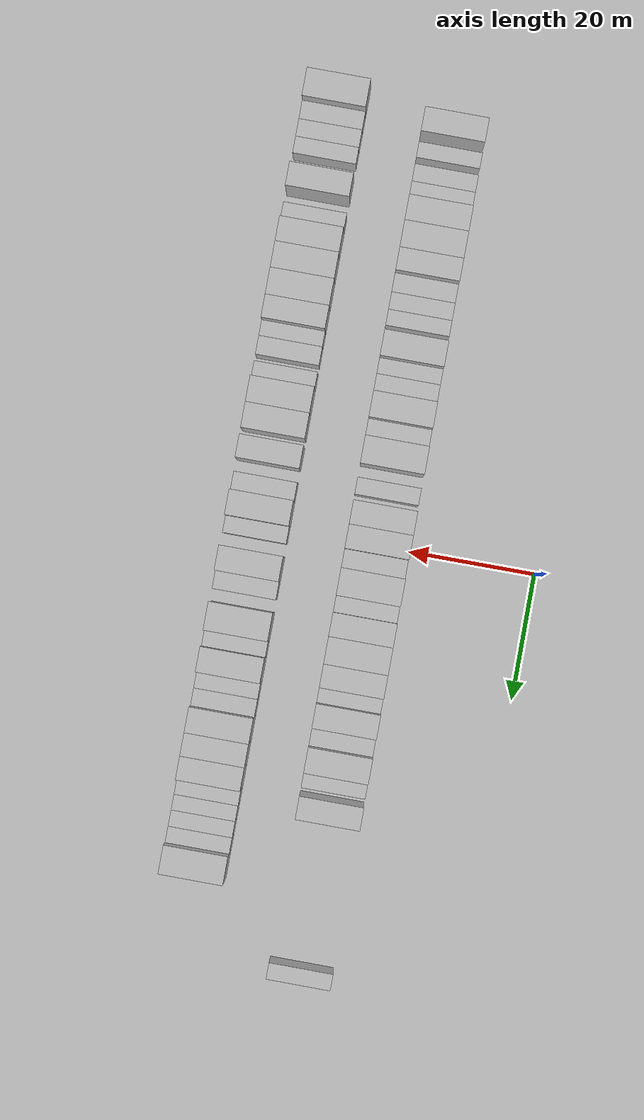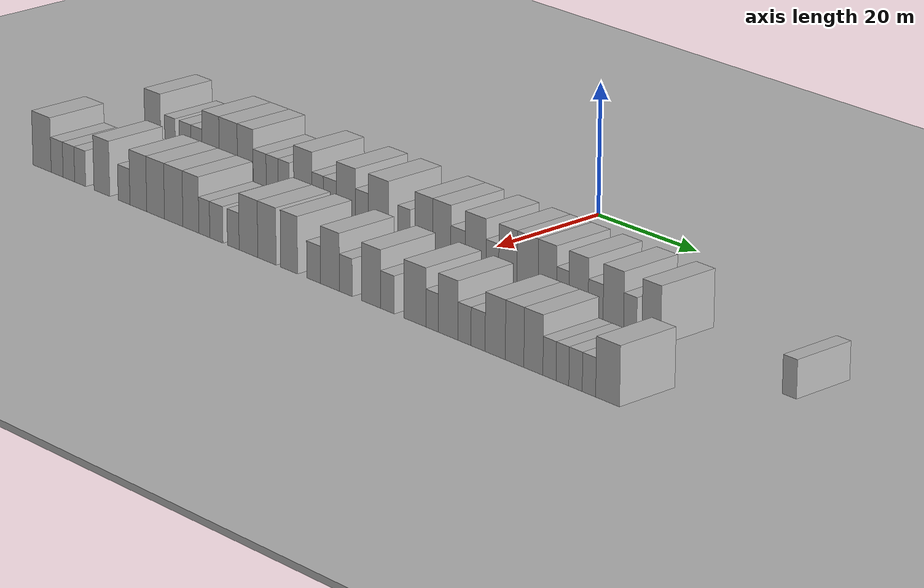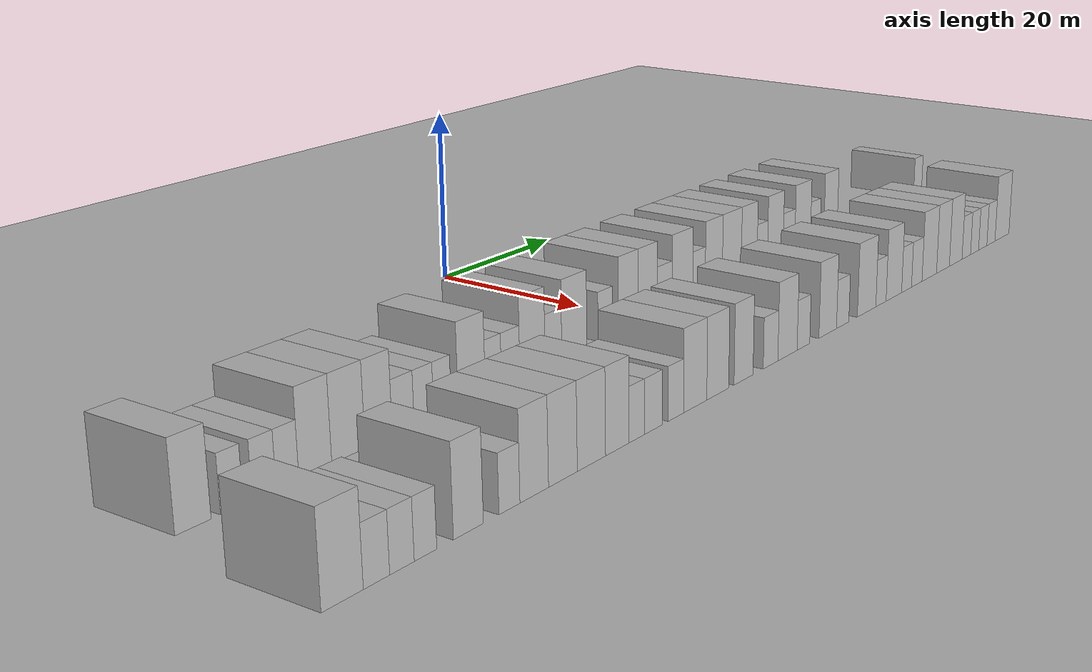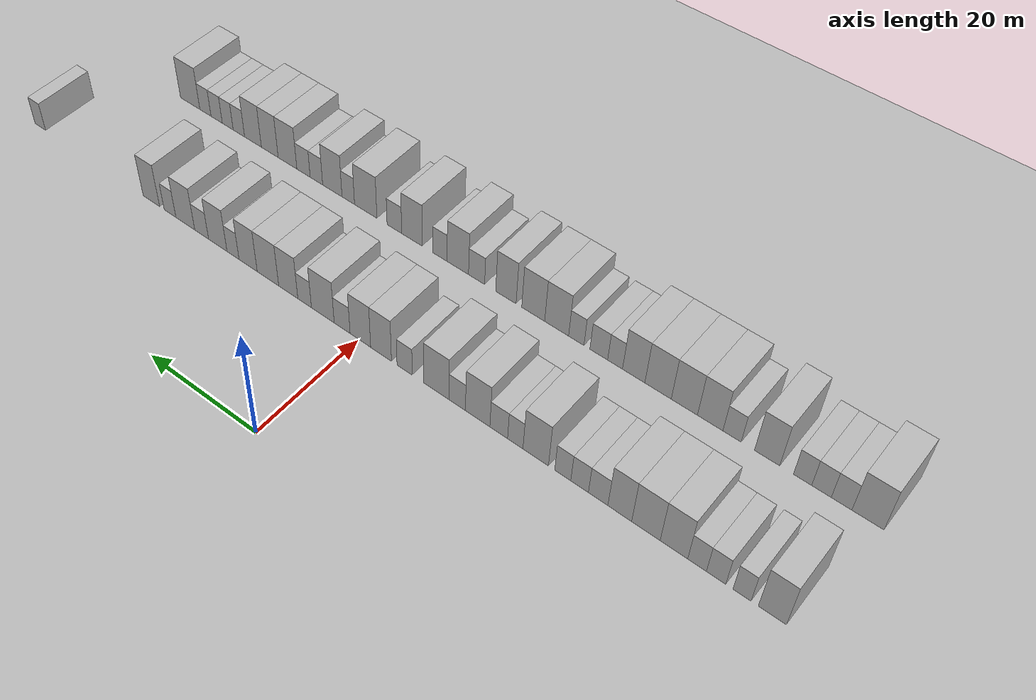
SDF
<sdf version="1.6">
 <world name="default">
  <include><name>ground_plane_1</name><uri>model://HANNAS_ground_plane</uri></include>
  <include>
   <name>ground_plane_2</name>
   <uri>model://HANNAS_ground_plane</uri>
   <pose>100 0 0  0 0 0</pose>
  </include>
  <model name="building_31">
   <static>1</static>
   <pose>25.0000 -65.7433 0 0.000000 0.000000 0.000000</pose>
   <link name="link">
    <pose>0 0 4.50 0 0 0</pose>
    <collision name="collision"><geometry><box><size>10.0000 3.8264 9.0000</size></box></geometry></collision>
    <visual name="visual">
     <cast_shadows>0</cast_shadows>
     <geometry><box><size>10.0000 3.8264 9.0000</size></box></geometry>
     <material>
      <script>
       <uri>model://HANNAS_wall/materials/scripts</uri>
       <uri>model://HANNAS_wall/materials/textures</uri>
       <name>vrc/HANNAS_wall</name>
      </script>
     </material>
    </visual>
   </link>
  </model>
  <model name="building_32">
   <static>1</static>
   <pose>25.0000 -61.5721 0 0.000000 0.000000 0.000000</pose>
   <link name="link">
    <pose>0 0 3.00 0 0 0</pose>
    <collision name="collision"><geometry><box><size>10.0000 2.5161 6.0000</size></box></geometry></collision>
    <visual name="visual">
     <cast_shadows>0</cast_shadows>
     <geometry><box><size>10.0000 2.5161 6.0000</size></box></geometry>
     <material>
      <script>
       <uri>model://HANNAS_wall/materials/scripts</uri>
       <uri>model://HANNAS_wall/materials/textures</uri>
       <name>vrc/HANNAS_wall</name>
      </script>
     </material>
    </visual>
   </link>
  </model>
  <model name="building_33">
   <static>1</static>
   <pose>25.0000 -57.9452 0 0.000000 0.000000 0.000000</pose>
   <link name="link">
    <pose>0 0 3.00 0 0 0</pose>
    <collision name="collision"><geometry><box><size>10.0000 2.7375 6.0000</size></box></geometry></collision>
    <visual name="visual">
     <cast_shadows>0</cast_shadows>
     <geometry><box><size>10.0000 2.7375 6.0000</size></box></geometry>
     <material>
      <script>
       <uri>model://HANNAS_wall/materials/scripts</uri>
       <uri>model://HANNAS_wall/materials/textures</uri>
       <name>vrc/HANNAS_wall</name>
      </script>
     </material>
    </visual>
   </link>
  </model>
  <model name="building_34">
   <static>1</static>
   <pose>25.0000 -55.2380 0 0.000000 0.000000 0.000000</pose>
   <link name="link">
    <pose>0 0 3.00 0 0 0</pose>
    <collision name="collision"><geometry><box><size>10.0000 2.6770 6.0000</size></box></geometry></collision>
    <visual name="visual">
     <cast_shadows>0</cast_shadows>
     <geometry><box><size>10.0000 2.6770 6.0000</size></box></geometry>
     <material>
      <script>
       <uri>model://HANNAS_wall/materials/scripts</uri>
       <uri>model://HANNAS_wall/materials/textures</uri>
       <name>vrc/HANNAS_wall</name>
      </script>
     </material>
    </visual>
   </link>
  </model>
  <model name="building_35">
   <static>1</static>
   <pose>25.0000 -51.8921 0 0.000000 0.000000 0.000000</pose>
   <link name="link">
    <pose>0 0 4.50 0 0 0</pose>
    <collision name="collision"><geometry><box><size>10.0000 4.0147 9.0000</size></box></geometry></collision>
    <visual name="visual">
     <cast_shadows>0</cast_shadows>
     <geometry><box><size>10.0000 4.0147 9.0000</size></box></geometry>
     <material>
      <script>
       <uri>model://HANNAS_wall/materials/scripts</uri>
       <uri>model://HANNAS_wall/materials/textures</uri>
       <name>vrc/HANNAS_wall</name>
      </script>
     </material>
    </visual>
   </link>
  </model>
  <model name="building_36">
   <static>1</static>
   <pose>25.0000 -47.7623 0 0.000000 0.000000 0.000000</pose>
   <link name="link">
    <pose>0 0 4.50 0 0 0</pose>
    <collision name="collision"><geometry><box><size>10.0000 4.2450 9.0000</size></box></geometry></collision>
    <visual name="visual">
     <cast_shadows>0</cast_shadows>
     <geometry><box><size>10.0000 4.2450 9.0000</size></box></geometry>
     <material>
      <script>
       <uri>model://HANNAS_wall/materials/scripts</uri>
       <uri>model://HANNAS_wall/materials/textures</uri>
       <name>vrc/HANNAS_wall</name>
      </script>
     </material>
    </visual>
   </link>
  </model>
  <model name="building_37">
   <static>1</static>
   <pose>25.0000 -43.8345 0 0.000000 0.000000 0.000000</pose>
   <link name="link">
    <pose>0 0 4.50 0 0 0</pose>
    <collision name="collision"><geometry><box><size>10.0000 3.6106 9.0000</size></box></geometry></collision>
    <visual name="visual">
     <cast_shadows>0</cast_shadows>
     <geometry><box><size>10.0000 3.6106 9.0000</size></box></geometry>
     <material>
      <script>
       <uri>model://HANNAS_wall/materials/scripts</uri>
       <uri>model://HANNAS_wall/materials/textures</uri>
       <name>vrc/HANNAS_wall</name>
      </script>
     </material>
    </visual>
   </link>
  </model>
  <model name="building_38">
   <static>1</static>
   <pose>25.0000 -40.5344 0 0.000000 0.000000 0.000000</pose>
   <link name="link">
    <pose>0 0 3.00 0 0 0</pose>
    <collision name="collision"><geometry><box><size>10.0000 2.9896 6.0000</size></box></geometry></collision>
    <visual name="visual">
     <cast_shadows>0</cast_shadows>
     <geometry><box><size>10.0000 2.9896 6.0000</size></box></geometry>
     <material>
      <script>
       <uri>model://HANNAS_wall/materials/scripts</uri>
       <uri>model://HANNAS_wall/materials/textures</uri>
       <name>vrc/HANNAS_wall</name>
      </script>
     </material>
    </visual>
   </link>
  </model>
  <model name="building_39">
   <static>1</static>
   <pose>25.0000 -37.6653 0 0.000000 0.000000 0.000000</pose>
   <link name="link">
    <pose>0 0 3.00 0 0 0</pose>
    <collision name="collision"><geometry><box><size>10.0000 2.7485 6.0000</size></box></geometry></collision>
    <visual name="visual">
     <cast_shadows>0</cast_shadows>
     <geometry><box><size>10.0000 2.7485 6.0000</size></box></geometry>
     <material>
      <script>
       <uri>model://HANNAS_wall/materials/scripts</uri>
       <uri>model://HANNAS_wall/materials/textures</uri>
       <name>vrc/HANNAS_wall</name>
      </script>
     </material>
    </visual>
   </link>
  </model>
  <model name="building_40">
   <static>1</static>
   <pose>25.0000 -35.0233 0 0.000000 0.000000 0.000000</pose>
   <link name="link">
    <pose>0 0 3.00 0 0 0</pose>
    <collision name="collision"><geometry><box><size>10.0000 2.5355 6.0000</size></box></geometry></collision>
    <visual name="visual">
     <cast_shadows>0</cast_shadows>
     <geometry><box><size>10.0000 2.5355 6.0000</size></box></geometry>
     <material>
      <script>
       <uri>model://HANNAS_wall/materials/scripts</uri>
       <uri>model://HANNAS_wall/materials/textures</uri>
       <name>vrc/HANNAS_wall</name>
      </script>
     </material>
    </visual>
   </link>
  </model>
  <model name="building_41">
   <static>1</static>
   <pose>25.0000 -30.7045 0 0.000000 0.000000 0.000000</pose>
   <link name="link">
    <pose>0 0 4.50 0 0 0</pose>
    <collision name="collision"><geometry><box><size>10.0000 4.1022 9.0000</size></box></geometry></collision>
    <visual name="visual">
     <cast_shadows>0</cast_shadows>
     <geometry><box><size>10.0000 4.1022 9.0000</size></box></geometry>
     <material>
      <script>
       <uri>model://HANNAS_wall/materials/scripts</uri>
       <uri>model://HANNAS_wall/materials/textures</uri>
       <name>vrc/HANNAS_wall</name>
      </script>
     </material>
    </visual>
   </link>
  </model>
  <model name="building_42">
   <static>1</static>
   <pose>25.0000 -27.3990 0 0.000000 0.000000 0.000000</pose>
   <link name="link">
    <pose>0 0 3.00 0 0 0</pose>
    <collision name="collision"><geometry><box><size>10.0000 2.5086 6.0000</size></box></geometry></collision>
    <visual name="visual">
     <cast_shadows>0</cast_shadows>
     <geometry><box><size>10.0000 2.5086 6.0000</size></box></geometry>
     <material>
      <script>
       <uri>model://HANNAS_wall/materials/scripts</uri>
       <uri>model://HANNAS_wall/materials/textures</uri>
       <name>vrc/HANNAS_wall</name>
      </script>
     </material>
    </visual>
   </link>
  </model>
  <model name="building_43">
   <static>1</static>
   <pose>25.0000 -24.6789 0 0.000000 0.000000 0.000000</pose>
   <link name="link">
    <pose>0 0 3.00 0 0 0</pose>
    <collision name="collision"><geometry><box><size>10.0000 2.9316 6.0000</size></box></geometry></collision>
    <visual name="visual">
     <cast_shadows>0</cast_shadows>
     <geometry><box><size>10.0000 2.9316 6.0000</size></box></geometry>
     <material>
      <script>
       <uri>model://HANNAS_wall/materials/scripts</uri>
       <uri>model://HANNAS_wall/materials/textures</uri>
       <name>vrc/HANNAS_wall</name>
      </script>
     </material>
    </visual>
   </link>
  </model>
  <model name="building_44">
   <static>1</static>
   <pose>25.0000 -21.1444 0 0.000000 0.000000 0.000000</pose>
   <link name="link">
    <pose>0 0 4.50 0 0 0</pose>
    <collision name="collision"><geometry><box><size>10.0000 4.1376 9.0000</size></box></geometry></collision>
    <visual name="visual">
     <cast_shadows>0</cast_shadows>
     <geometry><box><size>10.0000 4.1376 9.0000</size></box></geometry>
     <material>
      <script>
       <uri>model://HANNAS_wall/materials/scripts</uri>
       <uri>model://HANNAS_wall/materials/textures</uri>
       <name>vrc/HANNAS_wall</name>
      </script>
     </material>
    </visual>
   </link>
  </model>
  <model name="building_45">
   <static>1</static>
   <pose>25.0000 -17.6661 0 0.000000 0.000000 0.000000</pose>
   <link name="link">
    <pose>0 0 3.00 0 0 0</pose>
    <collision name="collision"><geometry><box><size>10.0000 2.8188 6.0000</size></box></geometry></collision>
    <visual name="visual">
     <cast_shadows>0</cast_shadows>
     <geometry><box><size>10.0000 2.8188 6.0000</size></box></geometry>
     <material>
      <script>
       <uri>model://HANNAS_wall/materials/scripts</uri>
       <uri>model://HANNAS_wall/materials/textures</uri>
       <name>vrc/HANNAS_wall</name>
      </script>
     </material>
    </visual>
   </link>
  </model>
  <model name="building_46">
   <static>1</static>
   <pose>25.0000 -14.0610 0 0.000000 0.000000 0.000000</pose>
   <link name="link">
    <pose>0 0 4.50 0 0 0</pose>
    <collision name="collision"><geometry><box><size>10.0000 4.3914 9.0000</size></box></geometry></collision>
    <visual name="visual">
     <cast_shadows>0</cast_shadows>
     <geometry><box><size>10.0000 4.3914 9.0000</size></box></geometry>
     <material>
      <script>
       <uri>model://HANNAS_wall/materials/scripts</uri>
       <uri>model://HANNAS_wall/materials/textures</uri>
       <name>vrc/HANNAS_wall</name>
      </script>
     </material>
    </visual>
   </link>
  </model>
  <model name="building_47">
   <static>1</static>
   <pose>25.0000 -8.5152 0 0.000000 0.000000 0.000000</pose>
   <link name="link">
    <pose>0 0 3.00 0 0 0</pose>
    <collision name="collision"><geometry><box><size>10.0000 2.7003 6.0000</size></box></geometry></collision>
    <visual name="visual">
     <cast_shadows>0</cast_shadows>
     <geometry><box><size>10.0000 2.7003 6.0000</size></box></geometry>
     <material>
      <script>
       <uri>model://HANNAS_wall/materials/scripts</uri>
       <uri>model://HANNAS_wall/materials/textures</uri>
       <name>vrc/HANNAS_wall</name>
      </script>
     </material>
    </visual>
   </link>
  </model>
  <model name="building_48">
   <static>1</static>
   <pose>25.0000 -4.2827 0 0.000000 0.000000 0.000000</pose>
   <link name="link">
    <pose>0 0 4.50 0 0 0</pose>
    <collision name="collision"><geometry><box><size>10.0000 3.7647 9.0000</size></box></geometry></collision>
    <visual name="visual">
     <cast_shadows>0</cast_shadows>
     <geometry><box><size>10.0000 3.7647 9.0000</size></box></geometry>
     <material>
      <script>
       <uri>model://HANNAS_wall/materials/scripts</uri>
       <uri>model://HANNAS_wall/materials/textures</uri>
       <name>vrc/HANNAS_wall</name>
      </script>
     </material>
    </visual>
   </link>
  </model>
  <model name="building_49">
   <static>1</static>
   <pose>25.0000 -0.5022 0 0.000000 0.000000 0.000000</pose>
   <link name="link">
    <pose>0 0 4.50 0 0 0</pose>
    <collision name="collision"><geometry><box><size>10.0000 3.7964 9.0000</size></box></geometry></collision>
    <visual name="visual">
     <cast_shadows>0</cast_shadows>
     <geometry><box><size>10.0000 3.7964 9.0000</size></box></geometry>
     <material>
      <script>
       <uri>model://HANNAS_wall/materials/scripts</uri>
       <uri>model://HANNAS_wall/materials/textures</uri>
       <name>vrc/HANNAS_wall</name>
      </script>
     </material>
    </visual>
   </link>
  </model>
  <model name="building_50">
   <static>1</static>
   <pose>25.0000 2.8793 0 0.000000 0.000000 0.000000</pose>
   <link name="link">
    <pose>0 0 3.00 0 0 0</pose>
    <collision name="collision"><geometry><box><size>10.0000 2.9666 6.0000</size></box></geometry></collision>
    <visual name="visual">
     <cast_shadows>0</cast_shadows>
     <geometry><box><size>10.0000 2.9666 6.0000</size></box></geometry>
     <material>
      <script>
       <uri>model://HANNAS_wall/materials/scripts</uri>
       <uri>model://HANNAS_wall/materials/textures</uri>
       <name>vrc/HANNAS_wall</name>
      </script>
     </material>
    </visual>
   </link>
  </model>
  <model name="building_51">
   <static>1</static>
   <pose>25.0000 6.5234 0 0.000000 0.000000 0.000000</pose>
   <link name="link">
    <pose>0 0 4.50 0 0 0</pose>
    <collision name="collision"><geometry><box><size>10.0000 4.3214 9.0000</size></box></geometry></collision>
    <visual name="visual">
     <cast_shadows>0</cast_shadows>
     <geometry><box><size>10.0000 4.3214 9.0000</size></box></geometry>
     <material>
      <script>
       <uri>model://HANNAS_wall/materials/scripts</uri>
       <uri>model://HANNAS_wall/materials/textures</uri>
       <name>vrc/HANNAS_wall</name>
      </script>
     </material>
    </visual>
   </link>
  </model>
  <model name="building_52">
   <static>1</static>
   <pose>25.0000 9.9989 0 0.000000 0.000000 0.000000</pose>
   <link name="link">
    <pose>0 0 3.00 0 0 0</pose>
    <collision name="collision"><geometry><box><size>10.0000 2.6296 6.0000</size></box></geometry></collision>
    <visual name="visual">
     <cast_shadows>0</cast_shadows>
     <geometry><box><size>10.0000 2.6296 6.0000</size></box></geometry>
     <material>
      <script>
       <uri>model://HANNAS_wall/materials/scripts</uri>
       <uri>model://HANNAS_wall/materials/textures</uri>
       <name>vrc/HANNAS_wall</name>
      </script>
     </material>
    </visual>
   </link>
  </model>
  <model name="building_53">
   <static>1</static>
   <pose>25.0000 13.1832 0 0.000000 0.000000 0.000000</pose>
   <link name="link">
    <pose>0 0 4.50 0 0 0</pose>
    <collision name="collision"><geometry><box><size>10.0000 3.7391 9.0000</size></box></geometry></collision>
    <visual name="visual">
     <cast_shadows>0</cast_shadows>
     <geometry><box><size>10.0000 3.7391 9.0000</size></box></geometry>
     <material>
      <script>
       <uri>model://HANNAS_wall/materials/scripts</uri>
       <uri>model://HANNAS_wall/materials/textures</uri>
       <name>vrc/HANNAS_wall</name>
      </script>
     </material>
    </visual>
   </link>
  </model>
  <model name="building_54">
   <static>1</static>
   <pose>25.0000 17.1880 0 0.000000 0.000000 0.000000</pose>
   <link name="link">
    <pose>0 0 4.50 0 0 0</pose>
    <collision name="collision"><geometry><box><size>10.0000 4.2704 9.0000</size></box></geometry></collision>
    <visual name="visual">
     <cast_shadows>0</cast_shadows>
     <geometry><box><size>10.0000 4.2704 9.0000</size></box></geometry>
     <material>
      <script>
       <uri>model://HANNAS_wall/materials/scripts</uri>
       <uri>model://HANNAS_wall/materials/textures</uri>
       <name>vrc/HANNAS_wall</name>
      </script>
     </material>
    </visual>
   </link>
  </model>
  <model name="building_55">
   <static>1</static>
   <pose>25.0000 21.1577 0 0.000000 0.000000 0.000000</pose>
   <link name="link">
    <pose>0 0 4.50 0 0 0</pose>
    <collision name="collision"><geometry><box><size>10.0000 3.6692 9.0000</size></box></geometry></collision>
    <visual name="visual">
     <cast_shadows>0</cast_shadows>
     <geometry><box><size>10.0000 3.6692 9.0000</size></box></geometry>
     <material>
      <script>
       <uri>model://HANNAS_wall/materials/scripts</uri>
       <uri>model://HANNAS_wall/materials/textures</uri>
       <name>vrc/HANNAS_wall</name>
      </script>
     </material>
    </visual>
   </link>
  </model>
  <model name="building_56">
   <static>1</static>
   <pose>25.0000 24.2247 0 0.000000 0.000000 0.000000</pose>
   <link name="link">
    <pose>0 0 3.00 0 0 0</pose>
    <collision name="collision"><geometry><box><size>10.0000 2.4648 6.0000</size></box></geometry></collision>
    <visual name="visual">
     <cast_shadows>0</cast_shadows>
     <geometry><box><size>10.0000 2.4648 6.0000</size></box></geometry>
     <material>
      <script>
       <uri>model://HANNAS_wall/materials/scripts</uri>
       <uri>model://HANNAS_wall/materials/textures</uri>
       <name>vrc/HANNAS_wall</name>
      </script>
     </material>
    </visual>
   </link>
  </model>
  <model name="building_57">
   <static>1</static>
   <pose>25.0000 27.3652 0 0.000000 0.000000 0.000000</pose>
   <link name="link">
    <pose>0 0 4.50 0 0 0</pose>
    <collision name="collision"><geometry><box><size>10.0000 3.8161 9.0000</size></box></geometry></collision>
    <visual name="visual">
     <cast_shadows>0</cast_shadows>
     <geometry><box><size>10.0000 3.8161 9.0000</size></box></geometry>
     <material>
      <script>
       <uri>model://HANNAS_wall/materials/scripts</uri>
       <uri>model://HANNAS_wall/materials/textures</uri>
       <name>vrc/HANNAS_wall</name>
      </script>
     </material>
    </visual>
   </link>
  </model>
  <model name="building_58">
   <static>1</static>
   <pose>25.0000 30.7295 0 0.000000 0.000000 0.000000</pose>
   <link name="link">
    <pose>0 0 3.00 0 0 0</pose>
    <collision name="collision"><geometry><box><size>10.0000 2.9127 6.0000</size></box></geometry></collision>
    <visual name="visual">
     <cast_shadows>0</cast_shadows>
     <geometry><box><size>10.0000 2.9127 6.0000</size></box></geometry>
     <material>
      <script>
       <uri>model://HANNAS_wall/materials/scripts</uri>
       <uri>model://HANNAS_wall/materials/textures</uri>
       <name>vrc/HANNAS_wall</name>
      </script>
     </material>
    </visual>
   </link>
  </model>
  <model name="building_59">
   <static>1</static>
   <pose>25.0000 34.1914 0 0.000000 0.000000 0.000000</pose>
   <link name="link">
    <pose>0 0 4.50 0 0 0</pose>
    <collision name="collision"><geometry><box><size>10.0000 4.0110 9.0000</size></box></geometry></collision>
    <visual name="visual">
     <cast_shadows>0</cast_shadows>
     <geometry><box><size>10.0000 4.0110 9.0000</size></box></geometry>
     <material>
      <script>
       <uri>model://HANNAS_wall/materials/scripts</uri>
       <uri>model://HANNAS_wall/materials/textures</uri>
       <name>vrc/HANNAS_wall</name>
      </script>
     </material>
    </visual>
   </link>
  </model>
  <model name="building_60">
   <static>1</static>
   <pose>25.0000 37.4595 0 0.000000 0.000000 0.000000</pose>
   <link name="link">
    <pose>0 0 3.00 0 0 0</pose>
    <collision name="collision"><geometry><box><size>10.0000 2.5252 6.0000</size></box></geometry></collision>
    <visual name="visual">
     <cast_shadows>0</cast_shadows>
     <geometry><box><size>10.0000 2.5252 6.0000</size></box></geometry>
     <material>
      <script>
       <uri>model://HANNAS_wall/materials/scripts</uri>
       <uri>model://HANNAS_wall/materials/textures</uri>
       <name>vrc/HANNAS_wall</name>
      </script>
     </material>
    </visual>
   </link>
  </model>
  <model name="building_61">
   <static>1</static>
   <pose>25.0000 41.5245 0 0.000000 0.000000 0.000000</pose>
   <link name="link">
    <pose>0 0 4.50 0 0 0</pose>
    <collision name="collision"><geometry><box><size>10.0000 3.6048 9.0000</size></box></geometry></collision>
    <visual name="visual">
     <cast_shadows>0</cast_shadows>
     <geometry><box><size>10.0000 3.6048 9.0000</size></box></geometry>
     <material>
      <script>
       <uri>model://HANNAS_wall/materials/scripts</uri>
       <uri>model://HANNAS_wall/materials/textures</uri>
       <name>vrc/HANNAS_wall</name>
      </script>
     </material>
    </visual>
   </link>
  </model>
  <model name="building_62">
   <static>1</static>
   <pose>25.0000 67.1527 0 0.000000 0.000000 0.000000</pose>
   <link name="link">
    <pose>0 0 3.00 0 0 0</pose>
    <collision name="collision"><geometry><box><size>10.0000 2.5505 6.0000</size></box></geometry></collision>
    <visual name="visual">
     <cast_shadows>0</cast_shadows>
     <geometry><box><size>10.0000 2.5505 6.0000</size></box></geometry>
     <material>
      <script>
       <uri>model://HANNAS_wall/materials/scripts</uri>
       <uri>model://HANNAS_wall/materials/textures</uri>
       <name>vrc/HANNAS_wall</name>
      </script>
     </material>
    </visual>
   </link>
  </model>
  <model name="building_132">
   <static>1</static>
   <pose>44.0000 -68.1333 0 0.000000 0.000000 0.000000</pose>
   <link name="link">
    <pose>0 0 4.50 0 0 0</pose>
    <collision name="collision"><geometry><box><size>10.0000 4.4559 9.0000</size></box></geometry></collision>
    <visual name="visual">
     <cast_shadows>0</cast_shadows>
     <geometry><box><size>10.0000 4.4559 9.0000</size></box></geometry>
     <material>
      <script>
       <uri>model://HANNAS_wall/materials/scripts</uri>
       <uri>model://HANNAS_wall/materials/textures</uri>
       <name>vrc/HANNAS_wall</name>
      </script>
     </material>
    </visual>
   </link>
  </model>
  <model name="building_133">
   <static>1</static>
   <pose>44.0000 -64.4548 0 0.000000 0.000000 0.000000</pose>
   <link name="link">
    <pose>0 0 3.00 0 0 0</pose>
    <collision name="collision"><geometry><box><size>10.0000 2.9012 6.0000</size></box></geometry></collision>
    <visual name="visual">
     <cast_shadows>0</cast_shadows>
     <geometry><box><size>10.0000 2.9012 6.0000</size></box></geometry>
     <material>
      <script>
       <uri>model://HANNAS_wall/materials/scripts</uri>
       <uri>model://HANNAS_wall/materials/textures</uri>
       <name>vrc/HANNAS_wall</name>
      </script>
     </material>
    </visual>
   </link>
  </model>
  <model name="building_134">
   <static>1</static>
   <pose>44.0000 -61.6065 0 0.000000 0.000000 0.000000</pose>
   <link name="link">
    <pose>0 0 3.00 0 0 0</pose>
    <collision name="collision"><geometry><box><size>10.0000 2.7955 6.0000</size></box></geometry></collision>
    <visual name="visual">
     <cast_shadows>0</cast_shadows>
     <geometry><box><size>10.0000 2.7955 6.0000</size></box></geometry>
     <material>
      <script>
       <uri>model://HANNAS_wall/materials/scripts</uri>
       <uri>model://HANNAS_wall/materials/textures</uri>
       <name>vrc/HANNAS_wall</name>
      </script>
     </material>
    </visual>
   </link>
  </model>
  <model name="building_135">
   <static>1</static>
   <pose>44.0000 -58.8880 0 0.000000 0.000000 0.000000</pose>
   <link name="link">
    <pose>0 0 3.00 0 0 0</pose>
    <collision name="collision"><geometry><box><size>10.0000 2.6415 6.0000</size></box></geometry></collision>
    <visual name="visual">
     <cast_shadows>0</cast_shadows>
     <geometry><box><size>10.0000 2.6415 6.0000</size></box></geometry>
     <material>
      <script>
       <uri>model://HANNAS_wall/materials/scripts</uri>
       <uri>model://HANNAS_wall/materials/textures</uri>
       <name>vrc/HANNAS_wall</name>
      </script>
     </material>
    </visual>
   </link>
  </model>
  <model name="building_136">
   <static>1</static>
   <pose>44.0000 -53.6937 0 0.000000 0.000000 0.000000</pose>
   <link name="link">
    <pose>0 0 4.50 0 0 0</pose>
    <collision name="collision"><geometry><box><size>10.0000 3.7471 9.0000</size></box></geometry></collision>
    <visual name="visual">
     <cast_shadows>0</cast_shadows>
     <geometry><box><size>10.0000 3.7471 9.0000</size></box></geometry>
     <material>
      <script>
       <uri>model://HANNAS_wall/materials/scripts</uri>
       <uri>model://HANNAS_wall/materials/textures</uri>
       <name>vrc/HANNAS_wall</name>
      </script>
     </material>
    </visual>
   </link>
  </model>
  <model name="building_137">
   <static>1</static>
   <pose>44.0000 -48.4326 0 0.000000 0.000000 0.000000</pose>
   <link name="link">
    <pose>0 0 3.00 0 0 0</pose>
    <collision name="collision"><geometry><box><size>10.0000 2.7752 6.0000</size></box></geometry></collision>
    <visual name="visual">
     <cast_shadows>0</cast_shadows>
     <geometry><box><size>10.0000 2.7752 6.0000</size></box></geometry>
     <material>
      <script>
       <uri>model://HANNAS_wall/materials/scripts</uri>
       <uri>model://HANNAS_wall/materials/textures</uri>
       <name>vrc/HANNAS_wall</name>
      </script>
     </material>
    </visual>
   </link>
  </model>
  <model name="building_138">
   <static>1</static>
   <pose>44.0000 -45.0837 0 0.000000 0.000000 0.000000</pose>
   <link name="link">
    <pose>0 0 4.50 0 0 0</pose>
    <collision name="collision"><geometry><box><size>10.0000 3.9224 9.0000</size></box></geometry></collision>
    <visual name="visual">
     <cast_shadows>0</cast_shadows>
     <geometry><box><size>10.0000 3.9224 9.0000</size></box></geometry>
     <material>
      <script>
       <uri>model://HANNAS_wall/materials/scripts</uri>
       <uri>model://HANNAS_wall/materials/textures</uri>
       <name>vrc/HANNAS_wall</name>
      </script>
     </material>
    </visual>
   </link>
  </model>
  <model name="building_139">
   <static>1</static>
   <pose>44.0000 -41.0617 0 0.000000 0.000000 0.000000</pose>
   <link name="link">
    <pose>0 0 4.50 0 0 0</pose>
    <collision name="collision"><geometry><box><size>10.0000 4.1217 9.0000</size></box></geometry></collision>
    <visual name="visual">
     <cast_shadows>0</cast_shadows>
     <geometry><box><size>10.0000 4.1217 9.0000</size></box></geometry>
     <material>
      <script>
       <uri>model://HANNAS_wall/materials/scripts</uri>
       <uri>model://HANNAS_wall/materials/textures</uri>
       <name>vrc/HANNAS_wall</name>
      </script>
     </material>
    </visual>
   </link>
  </model>
  <model name="building_140">
   <static>1</static>
   <pose>44.0000 -36.8893 0 0.000000 0.000000 0.000000</pose>
   <link name="link">
    <pose>0 0 4.50 0 0 0</pose>
    <collision name="collision"><geometry><box><size>10.0000 4.2231 9.0000</size></box></geometry></collision>
    <visual name="visual">
     <cast_shadows>0</cast_shadows>
     <geometry><box><size>10.0000 4.2231 9.0000</size></box></geometry>
     <material>
      <script>
       <uri>model://HANNAS_wall/materials/scripts</uri>
       <uri>model://HANNAS_wall/materials/textures</uri>
       <name>vrc/HANNAS_wall</name>
      </script>
     </material>
    </visual>
   </link>
  </model>
  <model name="building_141">
   <static>1</static>
   <pose>44.0000 -32.9574 0 0.000000 0.000000 0.000000</pose>
   <link name="link">
    <pose>0 0 4.50 0 0 0</pose>
    <collision name="collision"><geometry><box><size>10.0000 3.6406 9.0000</size></box></geometry></collision>
    <visual name="visual">
     <cast_shadows>0</cast_shadows>
     <geometry><box><size>10.0000 3.6406 9.0000</size></box></geometry>
     <material>
      <script>
       <uri>model://HANNAS_wall/materials/scripts</uri>
       <uri>model://HANNAS_wall/materials/textures</uri>
       <name>vrc/HANNAS_wall</name>
      </script>
     </material>
    </visual>
   </link>
  </model>
  <model name="building_142">
   <static>1</static>
   <pose>44.0000 -29.9107 0 0.000000 0.000000 0.000000</pose>
   <link name="link">
    <pose>0 0 3.00 0 0 0</pose>
    <collision name="collision"><geometry><box><size>10.0000 2.4528 6.0000</size></box></geometry></collision>
    <visual name="visual">
     <cast_shadows>0</cast_shadows>
     <geometry><box><size>10.0000 2.4528 6.0000</size></box></geometry>
     <material>
      <script>
       <uri>model://HANNAS_wall/materials/scripts</uri>
       <uri>model://HANNAS_wall/materials/textures</uri>
       <name>vrc/HANNAS_wall</name>
      </script>
     </material>
    </visual>
   </link>
  </model>
  <model name="building_143">
   <static>1</static>
   <pose>44.0000 -27.2022 0 0.000000 0.000000 0.000000</pose>
   <link name="link">
    <pose>0 0 3.00 0 0 0</pose>
    <collision name="collision"><geometry><box><size>10.0000 2.9641 6.0000</size></box></geometry></collision>
    <visual name="visual">
     <cast_shadows>0</cast_shadows>
     <geometry><box><size>10.0000 2.9641 6.0000</size></box></geometry>
     <material>
      <script>
       <uri>model://HANNAS_wall/materials/scripts</uri>
       <uri>model://HANNAS_wall/materials/textures</uri>
       <name>vrc/HANNAS_wall</name>
      </script>
     </material>
    </visual>
   </link>
  </model>
  <model name="building_144">
   <static>1</static>
   <pose>44.0000 -23.4178 0 0.000000 0.000000 0.000000</pose>
   <link name="link">
    <pose>0 0 3.00 0 0 0</pose>
    <collision name="collision"><geometry><box><size>10.0000 2.6048 6.0000</size></box></geometry></collision>
    <visual name="visual">
     <cast_shadows>0</cast_shadows>
     <geometry><box><size>10.0000 2.6048 6.0000</size></box></geometry>
     <material>
      <script>
       <uri>model://HANNAS_wall/materials/scripts</uri>
       <uri>model://HANNAS_wall/materials/textures</uri>
       <name>vrc/HANNAS_wall</name>
      </script>
     </material>
    </visual>
   </link>
  </model>
  <model name="building_145">
   <static>1</static>
   <pose>44.0000 -20.0529 0 0.000000 0.000000 0.000000</pose>
   <link name="link">
    <pose>0 0 4.50 0 0 0</pose>
    <collision name="collision"><geometry><box><size>10.0000 4.1249 9.0000</size></box></geometry></collision>
    <visual name="visual">
     <cast_shadows>0</cast_shadows>
     <geometry><box><size>10.0000 4.1249 9.0000</size></box></geometry>
     <material>
      <script>
       <uri>model://HANNAS_wall/materials/scripts</uri>
       <uri>model://HANNAS_wall/materials/textures</uri>
       <name>vrc/HANNAS_wall</name>
      </script>
     </material>
    </visual>
   </link>
  </model>
  <model name="building_146">
   <static>1</static>
   <pose>44.0000 -15.9800 0 0.000000 0.000000 0.000000</pose>
   <link name="link">
    <pose>0 0 4.50 0 0 0</pose>
    <collision name="collision"><geometry><box><size>10.0000 4.0209 9.0000</size></box></geometry></collision>
    <visual name="visual">
     <cast_shadows>0</cast_shadows>
     <geometry><box><size>10.0000 4.0209 9.0000</size></box></geometry>
     <material>
      <script>
       <uri>model://HANNAS_wall/materials/scripts</uri>
       <uri>model://HANNAS_wall/materials/textures</uri>
       <name>vrc/HANNAS_wall</name>
      </script>
     </material>
    </visual>
   </link>
  </model>
  <model name="building_147">
   <static>1</static>
   <pose>44.0000 -11.1433 0 0.000000 0.000000 0.000000</pose>
   <link name="link">
    <pose>0 0 4.50 0 0 0</pose>
    <collision name="collision"><geometry><box><size>10.0000 3.6525 9.0000</size></box></geometry></collision>
    <visual name="visual">
     <cast_shadows>0</cast_shadows>
     <geometry><box><size>10.0000 3.6525 9.0000</size></box></geometry>
     <material>
      <script>
       <uri>model://HANNAS_wall/materials/scripts</uri>
       <uri>model://HANNAS_wall/materials/textures</uri>
       <name>vrc/HANNAS_wall</name>
      </script>
     </material>
    </visual>
   </link>
  </model>
  <model name="building_148">
   <static>1</static>
   <pose>44.0000 -5.8447 0 0.000000 0.000000 0.000000</pose>
   <link name="link">
    <pose>0 0 3.00 0 0 0</pose>
    <collision name="collision"><geometry><box><size>10.0000 2.9448 6.0000</size></box></geometry></collision>
    <visual name="visual">
     <cast_shadows>0</cast_shadows>
     <geometry><box><size>10.0000 2.9448 6.0000</size></box></geometry>
     <material>
      <script>
       <uri>model://HANNAS_wall/materials/scripts</uri>
       <uri>model://HANNAS_wall/materials/textures</uri>
       <name>vrc/HANNAS_wall</name>
      </script>
     </material>
    </visual>
   </link>
  </model>
  <model name="building_149">
   <static>1</static>
   <pose>44.0000 -2.3758 0 0.000000 0.000000 0.000000</pose>
   <link name="link">
    <pose>0 0 4.50 0 0 0</pose>
    <collision name="collision"><geometry><box><size>10.0000 3.9930 9.0000</size></box></geometry></collision>
    <visual name="visual">
     <cast_shadows>0</cast_shadows>
     <geometry><box><size>10.0000 3.9930 9.0000</size></box></geometry>
     <material>
      <script>
       <uri>model://HANNAS_wall/materials/scripts</uri>
       <uri>model://HANNAS_wall/materials/textures</uri>
       <name>vrc/HANNAS_wall</name>
      </script>
     </material>
    </visual>
   </link>
  </model>
  <model name="building_150">
   <static>1</static>
   <pose>44.0000 0.9706 0 0.000000 0.000000 0.000000</pose>
   <link name="link">
    <pose>0 0 3.00 0 0 0</pose>
    <collision name="collision"><geometry><box><size>10.0000 2.6998 6.0000</size></box></geometry></collision>
    <visual name="visual">
     <cast_shadows>0</cast_shadows>
     <geometry><box><size>10.0000 2.6998 6.0000</size></box></geometry>
     <material>
      <script>
       <uri>model://HANNAS_wall/materials/scripts</uri>
       <uri>model://HANNAS_wall/materials/textures</uri>
       <name>vrc/HANNAS_wall</name>
      </script>
     </material>
    </visual>
   </link>
  </model>
  <model name="building_151">
   <static>1</static>
   <pose>44.0000 6.2876 0 0.000000 0.000000 0.000000</pose>
   <link name="link">
    <pose>0 0 4.50 0 0 0</pose>
    <collision name="collision"><geometry><box><size>10.0000 3.9342 9.0000</size></box></geometry></collision>
    <visual name="visual">
     <cast_shadows>0</cast_shadows>
     <geometry><box><size>10.0000 3.9342 9.0000</size></box></geometry>
     <material>
      <script>
       <uri>model://HANNAS_wall/materials/scripts</uri>
       <uri>model://HANNAS_wall/materials/textures</uri>
       <name>vrc/HANNAS_wall</name>
      </script>
     </material>
    </visual>
   </link>
  </model>
  <model name="building_152">
   <static>1</static>
   <pose>44.0000 9.6755 0 0.000000 0.000000 0.000000</pose>
   <link name="link">
    <pose>0 0 3.00 0 0 0</pose>
    <collision name="collision"><geometry><box><size>10.0000 2.8417 6.0000</size></box></geometry></collision>
    <visual name="visual">
     <cast_shadows>0</cast_shadows>
     <geometry><box><size>10.0000 2.8417 6.0000</size></box></geometry>
     <material>
      <script>
       <uri>model://HANNAS_wall/materials/scripts</uri>
       <uri>model://HANNAS_wall/materials/textures</uri>
       <name>vrc/HANNAS_wall</name>
      </script>
     </material>
    </visual>
   </link>
  </model>
  <model name="building_153">
   <static>1</static>
   <pose>44.0000 15.3224 0 0.000000 0.000000 0.000000</pose>
   <link name="link">
    <pose>0 0 4.50 0 0 0</pose>
    <collision name="collision"><geometry><box><size>10.0000 4.4522 9.0000</size></box></geometry></collision>
    <visual name="visual">
     <cast_shadows>0</cast_shadows>
     <geometry><box><size>10.0000 4.4522 9.0000</size></box></geometry>
     <material>
      <script>
       <uri>model://HANNAS_wall/materials/scripts</uri>
       <uri>model://HANNAS_wall/materials/textures</uri>
       <name>vrc/HANNAS_wall</name>
      </script>
     </material>
    </visual>
   </link>
  </model>
  <model name="building_154">
   <static>1</static>
   <pose>44.0000 18.8173 0 0.000000 0.000000 0.000000</pose>
   <link name="link">
    <pose>0 0 3.00 0 0 0</pose>
    <collision name="collision"><geometry><box><size>10.0000 2.5375 6.0000</size></box></geometry></collision>
    <visual name="visual">
     <cast_shadows>0</cast_shadows>
     <geometry><box><size>10.0000 2.5375 6.0000</size></box></geometry>
     <material>
      <script>
       <uri>model://HANNAS_wall/materials/scripts</uri>
       <uri>model://HANNAS_wall/materials/textures</uri>
       <name>vrc/HANNAS_wall</name>
      </script>
     </material>
    </visual>
   </link>
  </model>
  <model name="building_155">
   <static>1</static>
   <pose>44.0000 22.0642 0 0.000000 0.000000 0.000000</pose>
   <link name="link">
    <pose>0 0 4.50 0 0 0</pose>
    <collision name="collision"><geometry><box><size>10.0000 3.9563 9.0000</size></box></geometry></collision>
    <visual name="visual">
     <cast_shadows>0</cast_shadows>
     <geometry><box><size>10.0000 3.9563 9.0000</size></box></geometry>
     <material>
      <script>
       <uri>model://HANNAS_wall/materials/scripts</uri>
       <uri>model://HANNAS_wall/materials/textures</uri>
       <name>vrc/HANNAS_wall</name>
      </script>
     </material>
    </visual>
   </link>
  </model>
  <model name="building_156">
   <static>1</static>
   <pose>44.0000 25.3382 0 0.000000 0.000000 0.000000</pose>
   <link name="link">
    <pose>0 0 3.00 0 0 0</pose>
    <collision name="collision"><geometry><box><size>10.0000 2.5917 6.0000</size></box></geometry></collision>
    <visual name="visual">
     <cast_shadows>0</cast_shadows>
     <geometry><box><size>10.0000 2.5917 6.0000</size></box></geometry>
     <material>
      <script>
       <uri>model://HANNAS_wall/materials/scripts</uri>
       <uri>model://HANNAS_wall/materials/textures</uri>
       <name>vrc/HANNAS_wall</name>
      </script>
     </material>
    </visual>
   </link>
  </model>
  <model name="building_157">
   <static>1</static>
   <pose>44.0000 28.0301 0 0.000000 0.000000 0.000000</pose>
   <link name="link">
    <pose>0 0 3.00 0 0 0</pose>
    <collision name="collision"><geometry><box><size>10.0000 2.7919 6.0000</size></box></geometry></collision>
    <visual name="visual">
     <cast_shadows>0</cast_shadows>
     <geometry><box><size>10.0000 2.7919 6.0000</size></box></geometry>
     <material>
      <script>
       <uri>model://HANNAS_wall/materials/scripts</uri>
       <uri>model://HANNAS_wall/materials/textures</uri>
       <name>vrc/HANNAS_wall</name>
      </script>
     </material>
    </visual>
   </link>
  </model>
  <model name="building_158">
   <static>1</static>
   <pose>44.0000 31.4137 0 0.000000 0.000000 0.000000</pose>
   <link name="link">
    <pose>0 0 4.50 0 0 0</pose>
    <collision name="collision"><geometry><box><size>10.0000 3.9753 9.0000</size></box></geometry></collision>
    <visual name="visual">
     <cast_shadows>0</cast_shadows>
     <geometry><box><size>10.0000 3.9753 9.0000</size></box></geometry>
     <material>
      <script>
       <uri>model://HANNAS_wall/materials/scripts</uri>
       <uri>model://HANNAS_wall/materials/textures</uri>
       <name>vrc/HANNAS_wall</name>
      </script>
     </material>
    </visual>
   </link>
  </model>
  <model name="building_159">
   <static>1</static>
   <pose>44.0000 35.2061 0 0.000000 0.000000 0.000000</pose>
   <link name="link">
    <pose>0 0 4.50 0 0 0</pose>
    <collision name="collision"><geometry><box><size>10.0000 3.6097 9.0000</size></box></geometry></collision>
    <visual name="visual">
     <cast_shadows>0</cast_shadows>
     <geometry><box><size>10.0000 3.6097 9.0000</size></box></geometry>
     <material>
      <script>
       <uri>model://HANNAS_wall/materials/scripts</uri>
       <uri>model://HANNAS_wall/materials/textures</uri>
       <name>vrc/HANNAS_wall</name>
      </script>
     </material>
    </visual>
   </link>
  </model>
  <model name="building_160">
   <static>1</static>
   <pose>44.0000 38.8493 0 0.000000 0.000000 0.000000</pose>
   <link name="link">
    <pose>0 0 4.50 0 0 0</pose>
    <collision name="collision"><geometry><box><size>10.0000 3.6767 9.0000</size></box></geometry></collision>
    <visual name="visual">
     <cast_shadows>0</cast_shadows>
     <geometry><box><size>10.0000 3.6767 9.0000</size></box></geometry>
     <material>
      <script>
       <uri>model://HANNAS_wall/materials/scripts</uri>
       <uri>model://HANNAS_wall/materials/textures</uri>
       <name>vrc/HANNAS_wall</name>
      </script>
     </material>
    </visual>
   </link>
  </model>
  <model name="building_161">
   <static>1</static>
   <pose>44.0000 41.9476 0 0.000000 0.000000 0.000000</pose>
   <link name="link">
    <pose>0 0 3.00 0 0 0</pose>
    <collision name="collision"><geometry><box><size>10.0000 2.5198 6.0000</size></box></geometry></collision>
    <visual name="visual">
     <cast_shadows>0</cast_shadows>
     <geometry><box><size>10.0000 2.5198 6.0000</size></box></geometry>
     <material>
      <script>
       <uri>model://HANNAS_wall/materials/scripts</uri>
       <uri>model://HANNAS_wall/materials/textures</uri>
       <name>vrc/HANNAS_wall</name>
      </script>
     </material>
    </visual>
   </link>
  </model>
  <model name="building_162">
   <static>1</static>
   <pose>44.0000 44.4252 0 0.000000 0.000000 0.000000</pose>
   <link name="link">
    <pose>0 0 3.00 0 0 0</pose>
    <collision name="collision"><geometry><box><size>10.0000 2.4356 6.0000</size></box></geometry></collision>
    <visual name="visual">
     <cast_shadows>0</cast_shadows>
     <geometry><box><size>10.0000 2.4356 6.0000</size></box></geometry>
     <material>
      <script>
       <uri>model://HANNAS_wall/materials/scripts</uri>
       <uri>model://HANNAS_wall/materials/textures</uri>
       <name>vrc/HANNAS_wall</name>
      </script>
     </material>
    </visual>
   </link>
  </model>
  <model name="building_163">
   <static>1</static>
   <pose>44.0000 46.9119 0 0.000000 0.000000 0.000000</pose>
   <link name="link">
    <pose>0 0 3.00 0 0 0</pose>
    <collision name="collision"><geometry><box><size>10.0000 2.5377 6.0000</size></box></geometry></collision>
    <visual name="visual">
     <cast_shadows>0</cast_shadows>
     <geometry><box><size>10.0000 2.5377 6.0000</size></box></geometry>
     <material>
      <script>
       <uri>model://HANNAS_wall/materials/scripts</uri>
       <uri>model://HANNAS_wall/materials/textures</uri>
       <name>vrc/HANNAS_wall</name>
      </script>
     </material>
    </visual>
   </link>
  </model>
  <model name="building_164">
   <static>1</static>
   <pose>44.0000 49.4469 0 0.000000 0.000000 0.000000</pose>
   <link name="link">
    <pose>0 0 3.00 0 0 0</pose>
    <collision name="collision"><geometry><box><size>10.0000 2.5324 6.0000</size></box></geometry></collision>
    <visual name="visual">
     <cast_shadows>0</cast_shadows>
     <geometry><box><size>10.0000 2.5324 6.0000</size></box></geometry>
     <material>
      <script>
       <uri>model://HANNAS_wall/materials/scripts</uri>
       <uri>model://HANNAS_wall/materials/textures</uri>
       <name>vrc/HANNAS_wall</name>
      </script>
     </material>
    </visual>
   </link>
  </model>
  <model name="building_165">
   <static>1</static>
   <pose>44.0000 52.9416 0 0.000000 0.000000 0.000000</pose>
   <link name="link">
    <pose>0 0 4.50 0 0 0</pose>
    <collision name="collision"><geometry><box><size>10.0000 4.4570 9.0000</size></box></geometry></collision>
    <visual name="visual">
     <cast_shadows>0</cast_shadows>
     <geometry><box><size>10.0000 4.4570 9.0000</size></box></geometry>
     <material>
      <script>
       <uri>model://HANNAS_wall/materials/scripts</uri>
       <uri>model://HANNAS_wall/materials/textures</uri>
       <name>vrc/HANNAS_wall</name>
      </script>
     </material>
    </visual>
   </link>
  </model>
 </world>
</sdf>
